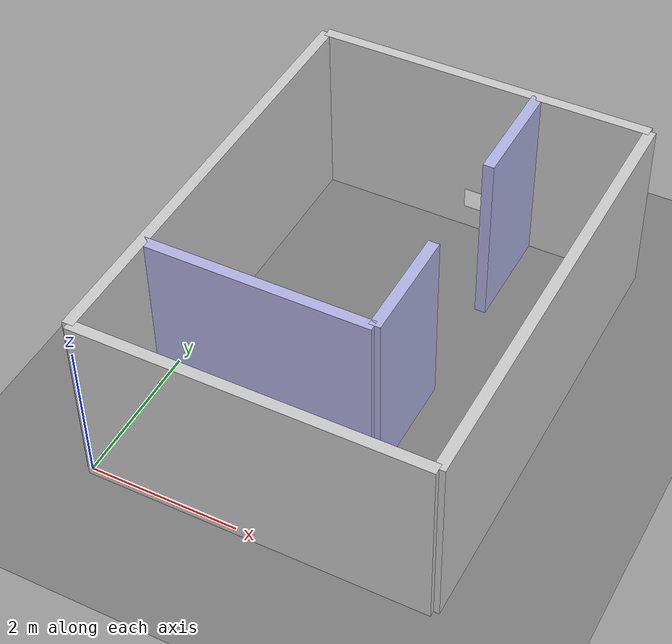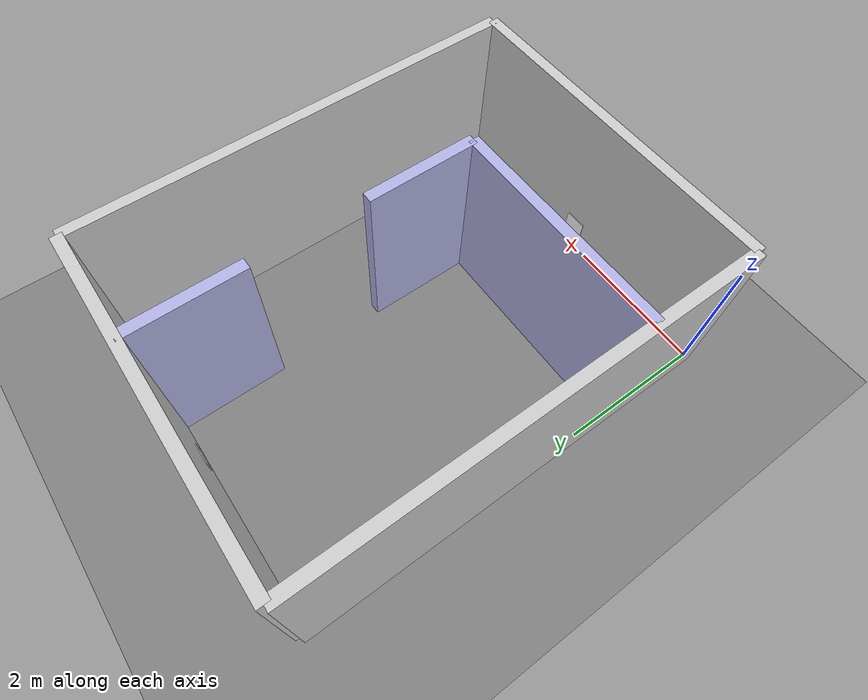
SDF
<?xml version="1.0"?>
<sdf version="1.6">
  <world name="tour_world">

    <physics name="1ms" type="ode">
      <max_step_size>0.001</max_step_size>
      <real_time_factor>1.0</real_time_factor>
      <real_time_update_rate>1000.0</real_time_update_rate>
    </physics>

    <plugin filename="gz-sim-physics-system"
        name="gz::sim::systems::Physics"/>
    <plugin filename="gz-sim-user-commands-system"
        name="gz::sim::systems::UserCommands"/>
    <plugin filename="gz-sim-scene-broadcaster-system"
        name="gz::sim::systems::SceneBroadcaster"/>
    <plugin filename="gz-sim-sensors-system"
        name="gz::sim::systems::Sensors">
      <render_engine>ogre2</render_engine>
    </plugin>
    <plugin filename="gz-sim-imu-system"
        name="gz::sim::systems::Imu"/>

    <light type="directional" name="sun">
      <cast_shadows>true</cast_shadows>
      <pose>0 0 10 0 0 0</pose>
      <diffuse>1 1 1 1</diffuse>
      <specular>0.2 0.2 0.2 1</specular>
      <direction>-0.5 0.1 -0.9</direction>
    </light>

    <model name="ground_plane">
      <static>true</static>
      <link name="link">
        <collision name="collision">
          <geometry>
            <plane>
              <normal>0 0 1</normal>
              <size>100 100</size>
            </plane>
          </geometry>
        </collision>
        <visual name="visual">
          <cast_shadows>false</cast_shadows>
          <geometry>
            <plane>
              <normal>0 0 1</normal>
              <size>100 100</size>
            </plane>
          </geometry>
          <material>
            <ambient>0.5 0.5 0.5 1</ambient>
            <diffuse>0.5 0.5 0.5 1</diffuse>
          </material>
        </visual>
      </link>
    </model>

    <!-- ===== OUTER WALLS ===== -->
    <model name="wall_south">
      <static>true</static>
      <pose>2.286 0.0 1.25 0 0 0</pose>
      <link name="link">
        <collision name="collision">
          <geometry><box><size>4.572 0.15 2.5</size></box></geometry>
        </collision>
        <visual name="visual">
          <geometry><box><size>4.572 0.15 2.5</size></box></geometry>
          <material><ambient>0.8 0.8 0.8 1</ambient><diffuse>0.8 0.8 0.8 1</diffuse></material>
        </visual>
      </link>
    </model>

    <model name="wall_north">
      <static>true</static>
      <pose>2.286 6.096 1.25 0 0 0</pose>
      <link name="link">
        <collision name="collision">
          <geometry><box><size>4.572 0.15 2.5</size></box></geometry>
        </collision>
        <visual name="visual">
          <geometry><box><size>4.572 0.15 2.5</size></box></geometry>
          <material><ambient>0.8 0.8 0.8 1</ambient><diffuse>0.8 0.8 0.8 1</diffuse></material>
        </visual>
      </link>
    </model>

    <model name="wall_west">
      <static>true</static>
      <pose>0.0 3.048 1.25 0 0 1.5708</pose>
      <link name="link">
        <collision name="collision">
          <geometry><box><size>6.096 0.15 2.5</size></box></geometry>
        </collision>
        <visual name="visual">
          <geometry><box><size>6.096 0.15 2.5</size></box></geometry>
          <material><ambient>0.8 0.8 0.8 1</ambient><diffuse>0.8 0.8 0.8 1</diffuse></material>
        </visual>
      </link>
    </model>

    <model name="wall_east">
      <static>true</static>
      <pose>4.572 3.048 1.25 0 0 1.5708</pose>
      <link name="link">
        <collision name="collision">
          <geometry><box><size>6.096 0.15 2.5</size></box></geometry>
        </collision>
        <visual name="visual">
          <geometry><box><size>6.096 0.15 2.5</size></box></geometry>
          <material><ambient>0.8 0.8 0.8 1</ambient><diffuse>0.8 0.8 0.8 1</diffuse></material>
        </visual>
      </link>
    </model>

    <!-- ===== INNER WALLS ===== -->
    <model name="wall_room_south">
      <static>true</static>
      <pose>1.524 1.524 1.25 0 0 0</pose>
      <link name="link">
        <collision name="collision">
          <geometry><box><size>3.048 0.15 2.5</size></box></geometry>
        </collision>
        <visual name="visual">
          <geometry><box><size>3.048 0.15 2.5</size></box></geometry>
          <material><ambient>0.7 0.7 0.9 1</ambient><diffuse>0.7 0.7 0.9 1</diffuse></material>
        </visual>
      </link>
    </model>

    <model name="wall_room_east_south">
      <static>true</static>
      <pose>3.048 2.286 1.25 0 0 1.5708</pose>
      <link name="link">
        <collision name="collision">
          <geometry><box><size>1.524 0.15 2.5</size></box></geometry>
        </collision>
        <visual name="visual">
          <geometry><box><size>1.524 0.15 2.5</size></box></geometry>
          <material><ambient>0.7 0.7 0.9 1</ambient><diffuse>0.7 0.7 0.9 1</diffuse></material>
        </visual>
      </link>
    </model>

    <model name="wall_room_east_north">
      <static>true</static>
      <pose>3.048 5.334 1.25 0 0 1.5708</pose>
      <link name="link">
        <collision name="collision">
          <geometry><box><size>1.524 0.15 2.5</size></box></geometry>
        </collision>
        <visual name="visual">
          <geometry><box><size>1.524 0.15 2.5</size></box></geometry>
          <material><ambient>0.7 0.7 0.9 1</ambient><diffuse>0.7 0.7 0.9 1</diffuse></material>
        </visual>
      </link>
    </model>

    <!-- ===== ARUCO MARKERS ===== -->

    <!-- Marker 0 — south wall, faces north into room -->
    <model name="aruco_marker_0">
      <static>true</static>
      <pose>2.286 0.08 0.5 0 0 0</pose>
      <link name="link">
        <visual name="visual">
          <geometry>
            <box><size>0.3 0.01 0.3</size></box>
          </geometry>
          <material>
            <ambient>1 1 1 1</ambient>
            <diffuse>1 1 1 1</diffuse>
            <pbr>
              <metal>
                <albedo_map>model://aruco_marker_0/materials/textures/marker_0.png</albedo_map>
              </metal>
            </pbr>
          </material>
        </visual>
      </link>
    </model>

    <!-- Marker 1 — north wall, faces south into room -->
    <model name="aruco_marker_1">
      <static>true</static>
      <pose>2.286 6.016 0.5 0 0 3.1416</pose>
      <link name="link">
        <visual name="visual">
          <geometry>
            <box><size>0.3 0.01 0.3</size></box>
          </geometry>
          <material>
            <ambient>1 1 1 1</ambient>
            <diffuse>1 1 1 1</diffuse>
            <pbr>
              <metal>
                <albedo_map>model://aruco_marker_1/materials/textures/marker_1.png</albedo_map>
              </metal>
            </pbr>
          </material>
        </visual>
      </link>
    </model>

    <!-- Marker 2 — west wall, faces east into room -->
    <model name="aruco_marker_2">
      <static>true</static>
      <pose>0.08 3.048 0.5 0 0 1.5708</pose>
      <link name="link">
        <visual name="visual">
          <geometry>
            <box><size>0.3 0.01 0.3</size></box>
          </geometry>
          <material>
            <ambient>1 1 1 1</ambient>
            <diffuse>1 1 1 1</diffuse>
            <pbr>
              <metal>
                <albedo_map>model://aruco_marker_2/materials/textures/marker_2.png</albedo_map>
              </metal>
            </pbr>
          </material>
        </visual>
      </link>
    </model>

    <!-- Marker 3 — inner south wall, faces south into outer corridor -->
    <model name="aruco_marker_3">
      <static>true</static>
      <pose>1.524 1.449 0.5 0 0 3.1416</pose>
      <link name="link">
        <visual name="visual">
          <geometry>
            <box><size>0.3 0.01 0.3</size></box>
          </geometry>
          <material>
            <ambient>1 1 1 1</ambient>
            <diffuse>1 1 1 1</diffuse>
            <pbr>
              <metal>
                <albedo_map>model://aruco_marker_3/materials/textures/marker_3.png</albedo_map>
              </metal>
            </pbr>
          </material>
        </visual>
      </link>
    </model>

  </world>
</sdf>
